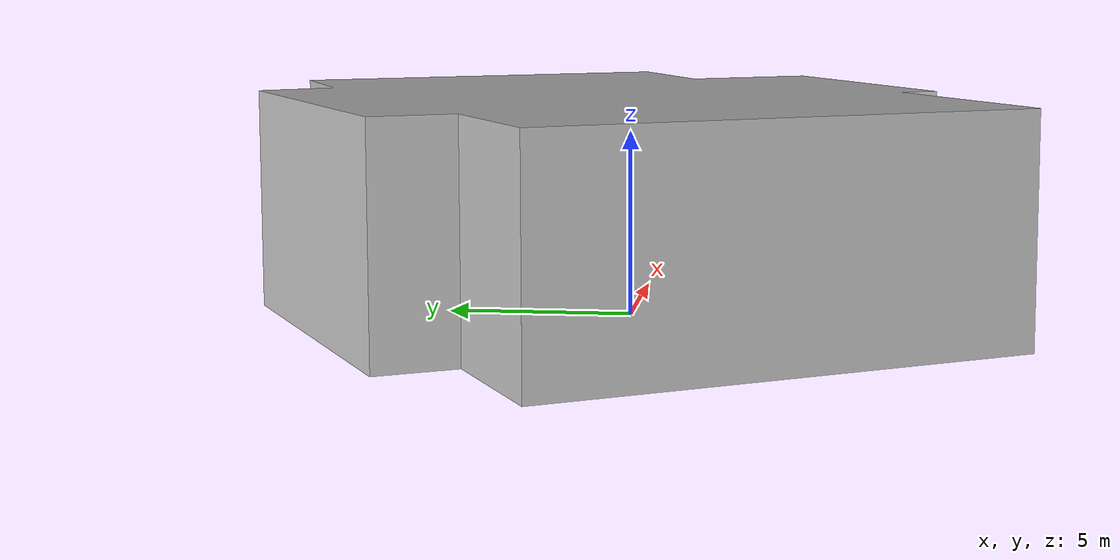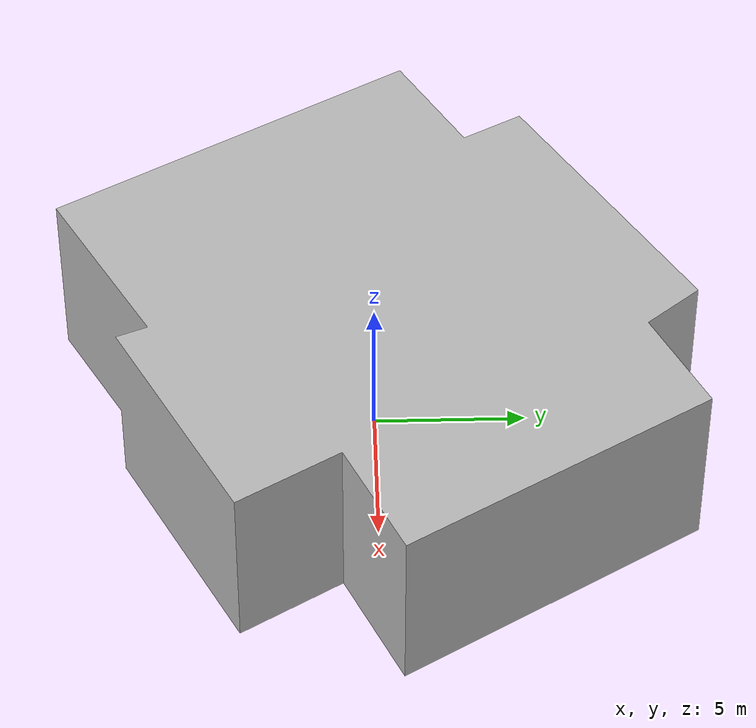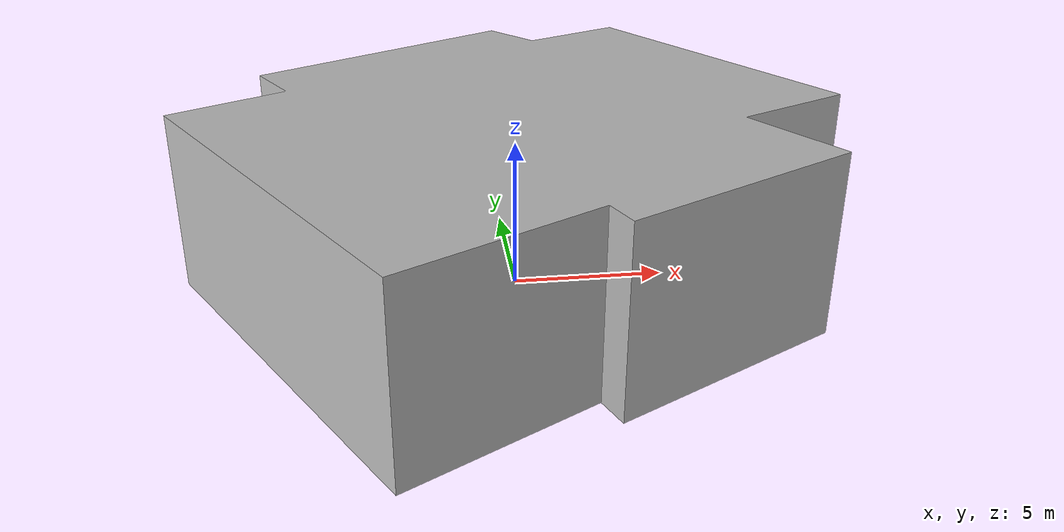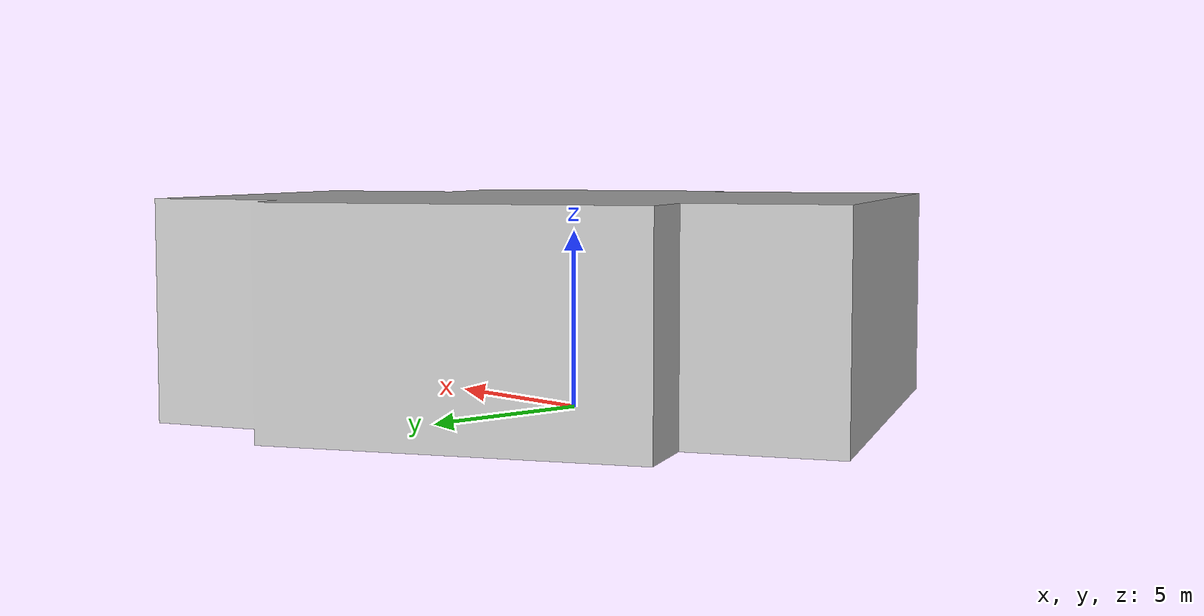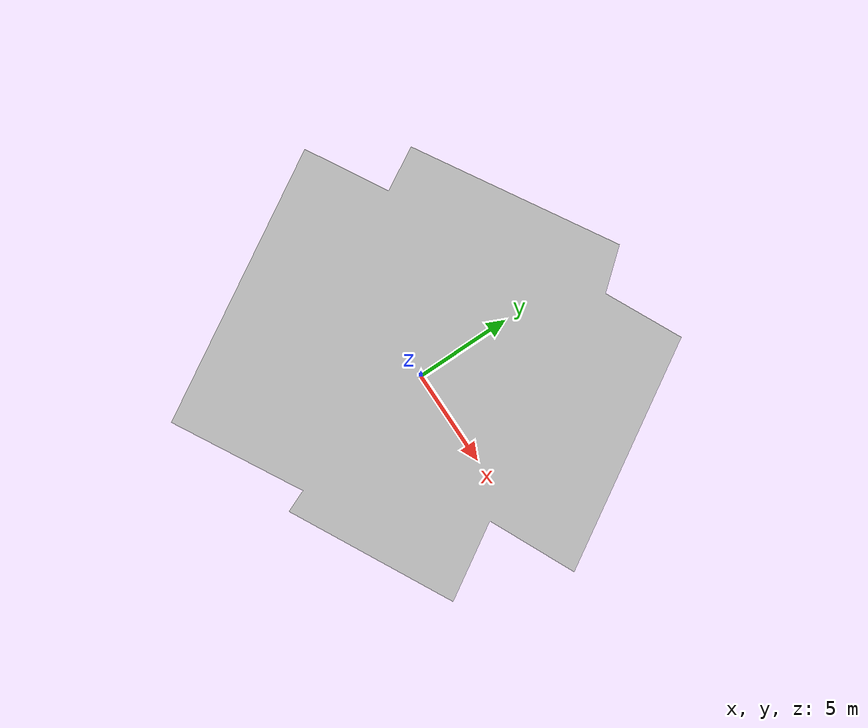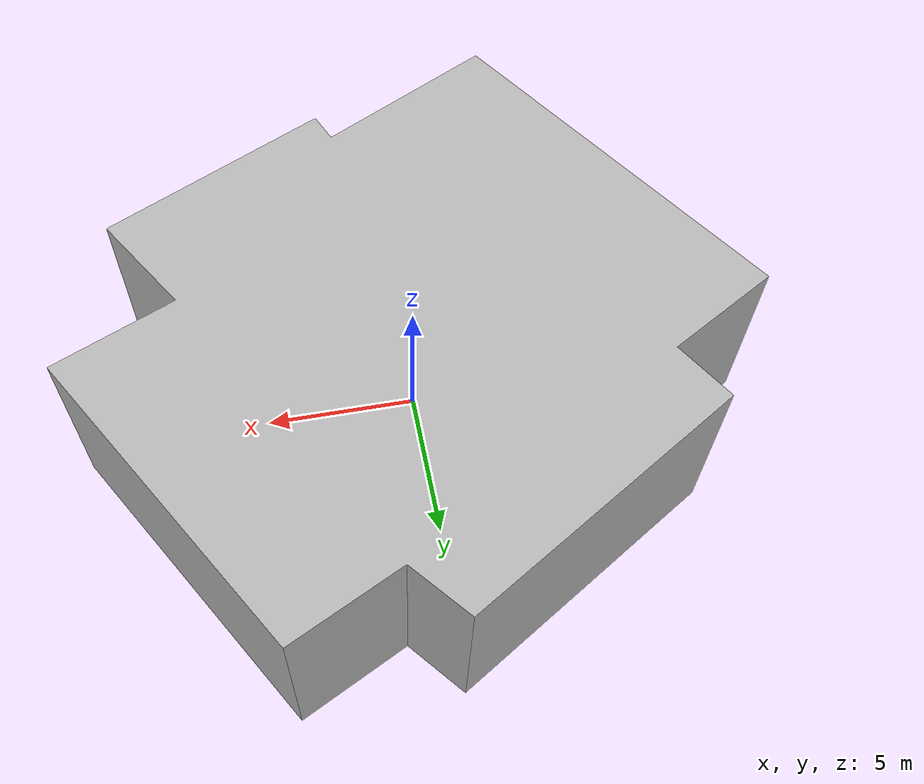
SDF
<?xml version="1.0" ?>
<sdf version="1.7">
  <model name="building_2807_assumed_a_casa">
    <static>true</static>
    <link name="building_link">
      <visual name="building_visual">
        <geometry>
          <mesh>
            <uri>model://building_2807_assumed_a_casa/meshes/construction_2807_assumed_A_Casa_h6m.obj</uri>
          </mesh>
        </geometry>
      </visual>
    <collision name="building_collision">
      <geometry>
        <mesh>
          <uri>model://building_2807_assumed_a_casa/meshes/construction_2807_assumed_A_Casa_h6m.obj</uri>
        </mesh>
      </geometry>
    </collision>
    </link>
  </model>
</sdf>
